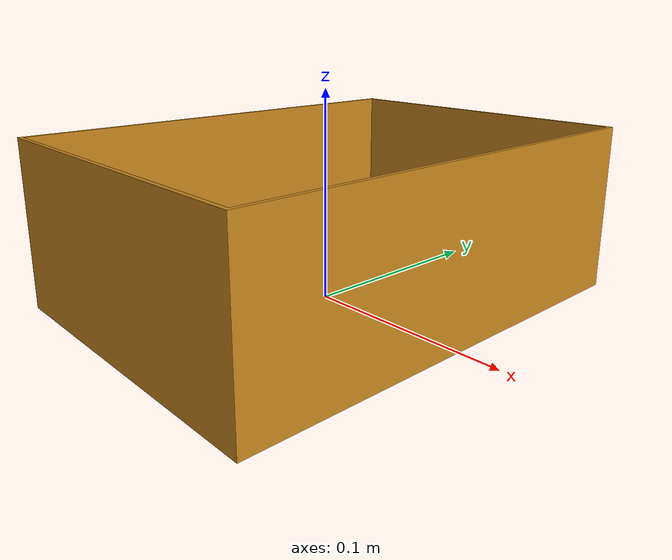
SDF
<?xml version="1.0" ?>
<sdf version="1.5">
  <model name="Boite de rangement statistique">
    <static>true</static>
    <link name="link">
      <pose>0 0 0 0 0 0</pose>
      <collision name="collision">
        <geometry>
          <mesh>
            <uri>model://boite_de_rangement/meshes/boite_de_rangementv5.dae</uri>
          </mesh>
        </geometry>
      </collision>
      <visual name="visual">
        <geometry>
          <mesh>
            <uri>model://boite_de_rangement/meshes/boite_de_rangementv5.dae</uri>
          </mesh>
        </geometry>
        <material>

        </material>
      </visual>
      <inertial>
        <mass>0.150</mass>
        <inertia> <!-- inertias are tricky to compute -->
          <!-- http://gazebosim.org/tutorials?tut=inertia&cat=build_robot -->
          <ixx>1.0e-3</ixx>       <!-- for a box: ixx = 0.083 * mass * (y*y + z*z) -->
          <ixy>6.7e-18</ixy>         <!-- for a box: ixy = 0 -->
          <ixz>0.0</ixz>         <!-- for a box: ixz = 0 -->
          <iyy>6.4e-3</iyy>       <!-- for a box: iyy = 0.083 * mass * (x*x + z*z) -->
          <iyz>0.0</iyz>         <!-- for a box: iyz = 0 -->
          <izz>1.4e-3</izz>       <!-- for a box: izz = 0.083 * mass * (x*x + y*y) -->
        </inertia>
      </inertial>
    </link>
  </model>
</sdf>
